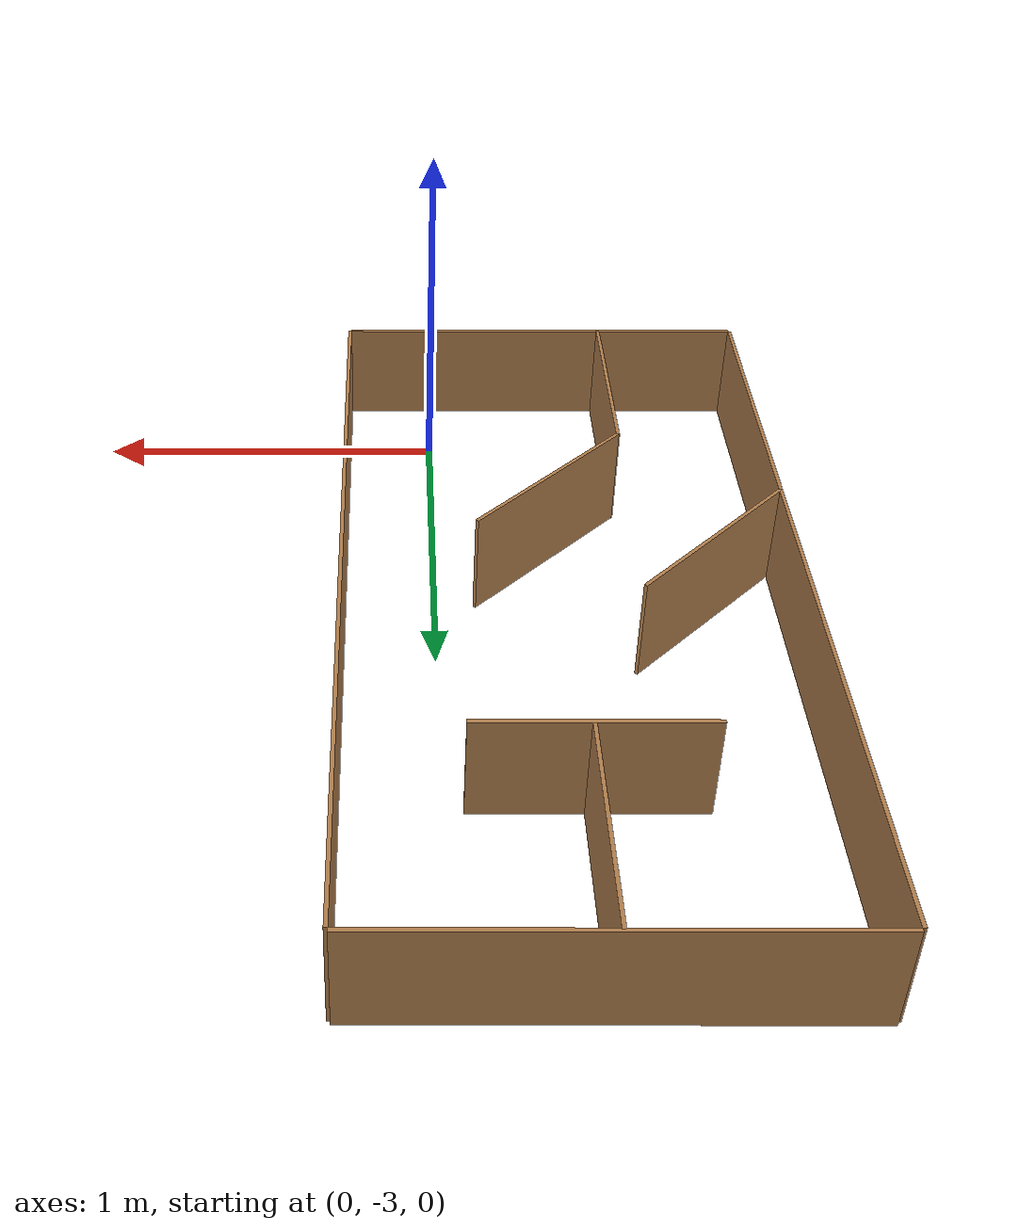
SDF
<?xml version='1.0'?>
<sdf version='1.7'>
  <model name='world_model_1'>
    <pose>-0.353106 -1.62745 0 0 -0 0</pose>
    <link name='Wall_18'>
      <collision name='Wall_18_Collision'>
        <geometry>
          <box>
            <size>2.4 0.01 0.3</size>
          </box>
        </geometry>
        <pose>0 0 0.15 0 -0 0</pose>
      </collision>
      <visual name='Wall_18_Visual'>
        <pose>0 0 0.15 0 -0 0</pose>
        <geometry>
          <box>
            <size>2.4 0.01 0.3</size>
          </box>
        </geometry>
        <material>
          <script>
            <uri>file://media/materials/scripts/gazebo.material</uri>
            <name>Gazebo/Wood</name>
          </script>
          <ambient>1 1 1 1</ambient>
        </material>
        <meta>
          <layer>0</layer>
        </meta>
      </visual>
      <pose>-0.603894 -0.41655 0 0 -0 -1.5708</pose>
    </link>
    <link name='Wall_22'>
      <collision name='Wall_22_Collision'>
        <geometry>
          <box>
            <size>1.2 0.01 0.3</size>
          </box>
        </geometry>
        <pose>0 0 0.15 0 -0 0</pose>
      </collision>
      <visual name='Wall_22_Visual'>
        <pose>0 0 0.15 0 -0 0</pose>
        <geometry>
          <box>
            <size>1.2 0.01 0.3</size>
          </box>
        </geometry>
        <material>
          <script>
            <uri>file://media/materials/scripts/gazebo.material</uri>
            <name>Gazebo/Wood</name>
          </script>
          <ambient>1 1 1 1</ambient>
        </material>
        <meta>
          <layer>0</layer>
        </meta>
      </visual>
      <pose>-0.001011 -1.62245 0 0 -0 0</pose>
    </link>
    <link name='Wall_27'>
      <collision name='Wall_27_Collision'>
        <geometry>
          <box>
            <size>2.4 0.01 0.3</size>
          </box>
        </geometry>
        <pose>0 0 0.15 0 -0 0</pose>
      </collision>
      <visual name='Wall_27_Visual'>
        <pose>0 0 0.15 0 -0 0</pose>
        <geometry>
          <box>
            <size>2.4 0.01 0.3</size>
          </box>
        </geometry>
        <material>
          <script>
            <uri>file://media/materials/scripts/gazebo.material</uri>
            <name>Gazebo/Wood</name>
          </script>
          <ambient>1 1 1 1</ambient>
        </material>
        <meta>
          <layer>0</layer>
        </meta>
      </visual>
      <pose>0.603894 -0.417733 0 0 -0 1.5708</pose>
    </link>
    <link name='Wall_29'>
      <collision name='Wall_29_Collision'>
        <geometry>
          <box>
            <size>1.2 0.01 0.3</size>
          </box>
        </geometry>
        <pose>0 0 0.15 0 -0 0</pose>
      </collision>
      <visual name='Wall_29_Visual'>
        <pose>0 0 0.15 0 -0 0</pose>
        <geometry>
          <box>
            <size>1.2 0.01 0.3</size>
          </box>
        </geometry>
        <material>
          <script>
            <uri>file://media/materials/scripts/gazebo.material</uri>
            <name>Gazebo/Wood</name>
          </script>
          <ambient>1 1 1 1</ambient>
        </material>
        <meta>
          <layer>0</layer>
        </meta>
      </visual>
      <pose>0.000289 0.787239 0 0 -0 0</pose>
    </link>
    <link name='Wall_31'>
      <collision name='Wall_31_Collision'>
        <geometry>
          <box>
            <size>0.6 0.01 0.3</size>
          </box>
        </geometry>
        <pose>0 0 0.15 0 -0 0</pose>
      </collision>
      <visual name='Wall_31_Visual'>
        <pose>0 0 0.15 0 -0 0</pose>
        <geometry>
          <box>
            <size>0.6 0.01 0.3</size>
          </box>
        </geometry>
        <material>
          <script>
            <uri>file://media/materials/scripts/gazebo.material</uri>
            <name>Gazebo/Wood</name>
          </script>
          <ambient>1 1 1 1</ambient>
        </material>
        <meta>
          <layer>0</layer>
        </meta>
      </visual>
      <pose>-0.002929 0.179784 0 0 -0 0</pose>
    </link>
    <link name='Wall_33'>
      <collision name='Wall_33_Collision'>
        <geometry>
          <box>
            <size>0.6 0.01 0.3</size>
          </box>
        </geometry>
        <pose>0 0 0.15 0 -0 0</pose>
      </collision>
      <visual name='Wall_33_Visual'>
        <pose>0 0 0.15 0 -0 0</pose>
        <geometry>
          <box>
            <size>0.6 0.01 0.3</size>
          </box>
        </geometry>
        <material>
          <script>
            <uri>file://media/materials/scripts/gazebo.material</uri>
            <name>Gazebo/Wood</name>
          </script>
          <ambient>1 1 1 1</ambient>
        </material>
        <meta>
          <layer>0</layer>
        </meta>
      </visual>
      <pose>0.001486 0.485272 0 0 -0 -1.5708</pose>
    </link>
    <link name='Wall_35'>
      <collision name='Wall_35_Collision'>
        <geometry>
          <box>
            <size>0.6 0.01 0.3</size>
          </box>
        </geometry>
        <pose>0 0 0.15 0 -0 0</pose>
      </collision>
      <visual name='Wall_35_Visual'>
        <pose>0 0 0.15 0 -0 0</pose>
        <geometry>
          <box>
            <size>0.6 0.01 0.3</size>
          </box>
        </geometry>
        <material>
          <script>
            <uri>file://media/materials/scripts/gazebo.material</uri>
            <name>Gazebo/Wood</name>
          </script>
          <ambient>1 1 1 1</ambient>
        </material>
        <meta>
          <layer>0</layer>
        </meta>
      </visual>
      <pose>-0.184647 -1.32127 0 0 -0 -1.5708</pose>
    </link>
    <link name='Wall_37'>
      <collision name='Wall_37_Collision'>
        <geometry>
          <box>
            <size>0.6 0.01 0.3</size>
          </box>
        </geometry>
        <pose>0 0 0.15 0 -0 0</pose>
      </collision>
      <visual name='Wall_37_Visual'>
        <pose>0 0 0.15 0 -0 0</pose>
        <geometry>
          <box>
            <size>0.6 0.01 0.3</size>
          </box>
        </geometry>
        <material>
          <script>
            <uri>file://media/materials/scripts/gazebo.material</uri>
            <name>Gazebo/Wood</name>
          </script>
          <ambient>1 1 1 1</ambient>
        </material>
        <meta>
          <layer>0</layer>
        </meta>
      </visual>
      <pose>0.028668 -0.812707 0 0 -0 0.785398</pose>
    </link>
    <link name='Wall_39'>
      <collision name='Wall_39_Collision'>
        <geometry>
          <box>
            <size>0.6 0.01 0.3</size>
          </box>
        </geometry>
        <pose>0 0 0.15 0 -0 0</pose>
      </collision>
      <visual name='Wall_39_Visual'>
        <pose>0 0 0.15 0 -0 0</pose>
        <geometry>
          <box>
            <size>0.6 0.01 0.3</size>
          </box>
        </geometry>
        <material>
          <script>
            <uri>file://media/materials/scripts/gazebo.material</uri>
            <name>Gazebo/Wood</name>
          </script>
          <ambient>1 1 1 1</ambient>
        </material>
        <meta>
          <layer>0</layer>
        </meta>
      </visual>
      <pose>-0.390711 -0.534007 0 0 -0 -2.35619</pose>
    </link>
    <static>1</static>
  </model>
</sdf>
